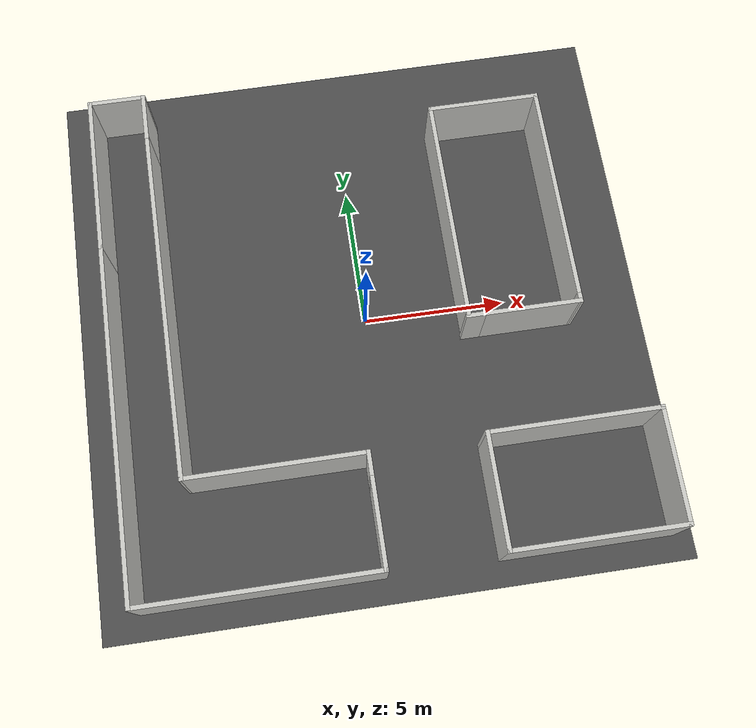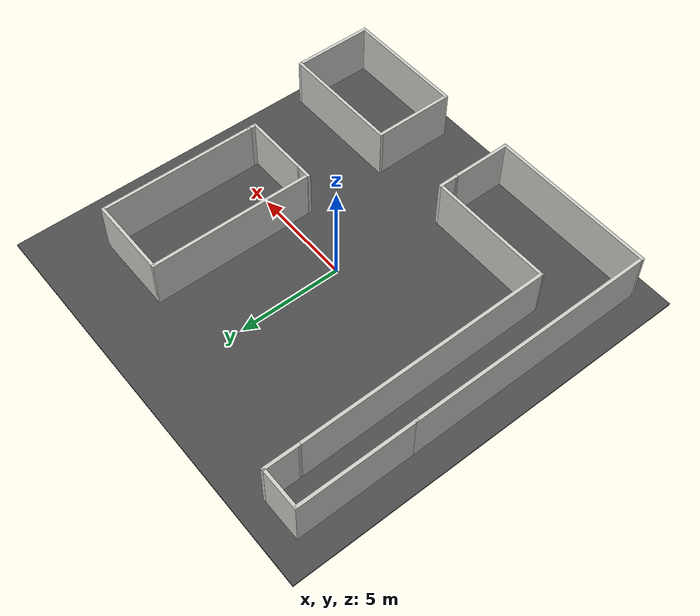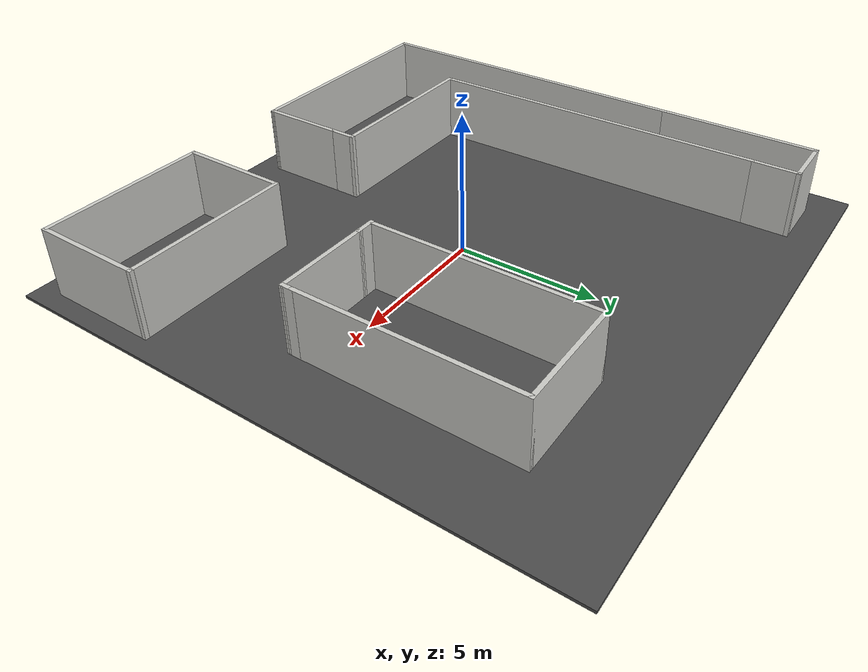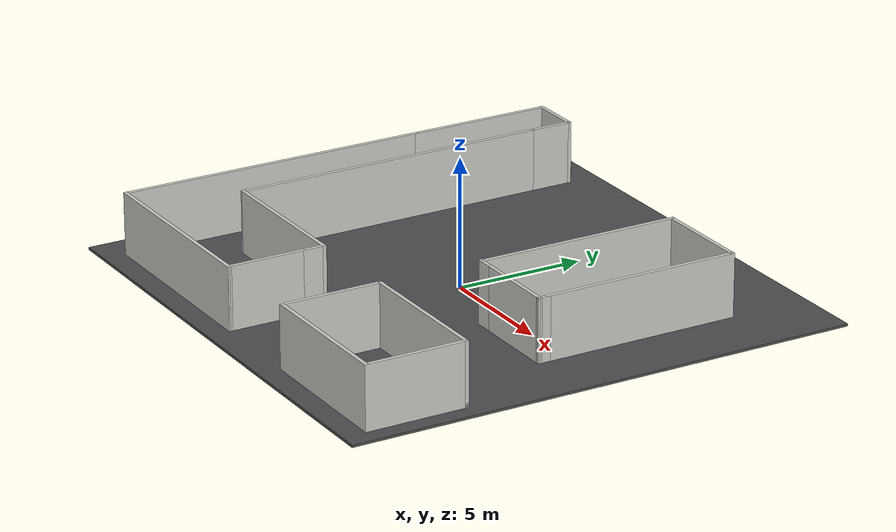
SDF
<?xml version="1.0" ?>
<sdf version="1.6">
  <world name="leo_simu">

    <physics type="ode">
      <ode>
        <solver>
          <!-- IMPORTANT for skid steering to properly work -->
          <friction_model>cone_model</friction_model>

          <island_threads>6</island_threads>
        </solver>
      </ode>
    </physics>

    <light name='sun' type='directional'>
      <pose frame=''>0 0 100 0 0.8 0</pose>
      <diffuse>1 1 1 1</diffuse>
      <specular>0.1 0.1 0.1 1</specular>
      <cast_shadows>1</cast_shadows>
    </light>

    <scene>
      <ambient>0.6 0.6 0.6 1.0</ambient>
      <sky>
        <clouds>
          <speed>12</speed>
        </clouds>
      </sky>
      <shadows>true</shadows>
      <origin_visual>false</origin_visual>
    </scene>

    <include>
      <uri>model://leo_map</uri>
    </include>

  </world>
</sdf>

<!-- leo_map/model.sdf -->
<sdf version='1.7'>
  <model name='leo_map'>
    <model name='Map_simu_leo'>
      <pose>0.167704 -0.085076 0 0 -0 0</pose>
      <link name='Wall_10'>
        <collision name='Wall_10_Collision'>
          <geometry>
            <box>
              <size>1 0.15 2.5</size>
            </box>
          </geometry>
          <pose>0 0 1.25 0 -0 0</pose>
        </collision>
        <visual name='Wall_10_Visual'>
          <pose>0 0 1.25 0 -0 0</pose>
          <geometry>
            <box>
              <size>1 0.15 2.5</size>
            </box>
          </geometry>
          <material>
            <script>
              <uri>file://media/materials/scripts/gazebo.material</uri>
              <name>Gazebo/CeilingTiled</name>
            </script>
            <ambient>1 1 1 1</ambient>
          </material>
          <meta>
            <layer>0</layer>
          </meta>
        </visual>
        <pose>-0.844024 -5.54588 0 0 -0 1.5708</pose>
      </link>
      <link name='Wall_12'>
        <collision name='Wall_12_Collision'>
          <geometry>
            <box>
              <size>6.25 0.15 2.5</size>
            </box>
          </geometry>
          <pose>0 0 1.25 0 -0 0</pose>
        </collision>
        <visual name='Wall_12_Visual'>
          <pose>0 0 1.25 0 -0 0</pose>
          <geometry>
            <box>
              <size>6.25 0.15 2.5</size>
            </box>
          </geometry>
          <material>
            <script>
              <uri>file://media/materials/scripts/gazebo.material</uri>
              <name>Gazebo/CeilingTiled</name>
            </script>
            <ambient>1 1 1 1</ambient>
          </material>
          <meta>
            <layer>0</layer>
          </meta>
        </visual>
        <pose>-3.89402 -5.12088 0 0 -0 3.14159</pose>
      </link>
      <link name='Wall_14'>
        <collision name='Wall_14_Collision'>
          <geometry>
            <box>
              <size>12.5715 0.15 2.5</size>
            </box>
          </geometry>
          <pose>0 0 1.25 0 -0 0</pose>
        </collision>
        <visual name='Wall_14_Visual'>
          <pose>0 0 1.25 0 -0 0</pose>
          <geometry>
            <box>
              <size>12.5715 0.15 2.5</size>
            </box>
          </geometry>
          <material>
            <script>
              <uri>file://media/materials/scripts/gazebo.material</uri>
              <name>Gazebo/CeilingTiled</name>
            </script>
            <ambient>1 1 1 1</ambient>
          </material>
          <meta>
            <layer>0</layer>
          </meta>
        </visual>
        <pose>-6.98199 1.08976 0 0 -0 1.57691</pose>
      </link>
      <link name='Wall_19'>
        <collision name='Wall_19_Collision'>
          <geometry>
            <box>
              <size>2 0.15 2.5</size>
            </box>
          </geometry>
          <pose>0 0 1.25 0 -0 0</pose>
        </collision>
        <visual name='Wall_19_Visual'>
          <pose>0 0 1.25 0 -0 0</pose>
          <geometry>
            <box>
              <size>2 0.15 2.5</size>
            </box>
          </geometry>
          <material>
            <script>
              <uri>file://media/materials/scripts/gazebo.material</uri>
              <name>Gazebo/CeilingTiled</name>
            </script>
            <ambient>1 1 1 1</ambient>
          </material>
          <meta>
            <layer>0</layer>
          </meta>
        </visual>
        <pose>-8.01902 8.89912 0 0 -0 0</pose>
      </link>
      <link name='Wall_21'>
        <collision name='Wall_21_Collision'>
          <geometry>
            <box>
              <size>1.75 0.15 2.5</size>
            </box>
          </geometry>
          <pose>0 0 1.25 0 -0 0</pose>
        </collision>
        <visual name='Wall_21_Visual'>
          <pose>0 0 1.25 0 -0 0</pose>
          <geometry>
            <box>
              <size>1.75 0.15 2.5</size>
            </box>
          </geometry>
          <material>
            <script>
              <uri>file://media/materials/scripts/gazebo.material</uri>
              <name>Gazebo/CeilingTiled</name>
            </script>
            <ambient>1 1 1 1</ambient>
          </material>
          <meta>
            <layer>0</layer>
          </meta>
        </visual>
        <pose>-7.01996 8.10367 0 0 -0 1.5708</pose>
      </link>
      <link name='Wall_23'>
        <collision name='Wall_23_Collision'>
          <geometry>
            <box>
              <size>0.15 0.15 2.5</size>
            </box>
          </geometry>
          <pose>0 0 1.25 0 -0 0</pose>
        </collision>
        <visual name='Wall_23_Visual'>
          <pose>0 0 1.25 0 -0 0</pose>
          <geometry>
            <box>
              <size>0.15 0.15 2.5</size>
            </box>
          </geometry>
          <material>
            <script>
              <uri>file://media/materials/scripts/gazebo.material</uri>
              <name>Gazebo/CeilingTiled</name>
            </script>
            <ambient>1 1 1 1</ambient>
          </material>
          <meta>
            <layer>0</layer>
          </meta>
        </visual>
        <pose>-7.01996 8.9004 0 0 -0 0</pose>
      </link>
      <link name='Wall_3'>
        <collision name='Wall_3_Collision'>
          <geometry>
            <box>
              <size>5.77 0.15 2.5</size>
            </box>
          </geometry>
          <pose>0 0 1.25 0 -0 0</pose>
        </collision>
        <visual name='Wall_3_Visual'>
          <pose>0 0 1.25 0 -0 0</pose>
          <geometry>
            <box>
              <size>5.77 0.15 2.5</size>
            </box>
          </geometry>
          <material>
            <script>
              <uri>file://media/materials/scripts/gazebo.material</uri>
              <name>Gazebo/CeilingTiled</name>
            </script>
            <ambient>1 1 1 1</ambient>
          </material>
          <meta>
            <layer>0</layer>
          </meta>
        </visual>
        <pose>-8.94402 6.08912 0 0 -0 1.5708</pose>
      </link>
      <link name='Wall_30'>
        <collision name='Wall_30_Collision'>
          <geometry>
            <box>
              <size>4 0.15 2.5</size>
            </box>
          </geometry>
          <pose>0 0 1.25 0 -0 0</pose>
        </collision>
        <visual name='Wall_30_Visual'>
          <pose>0 0 1.25 0 -0 0</pose>
          <geometry>
            <box>
              <size>4 0.15 2.5</size>
            </box>
          </geometry>
          <material>
            <script>
              <uri>file://media/materials/scripts/gazebo.material</uri>
              <name>Gazebo/CeilingTiled</name>
            </script>
            <ambient>1 1 1 1</ambient>
          </material>
          <meta>
            <layer>0</layer>
          </meta>
        </visual>
        <pose>3.09404 -6.96439 0 0 -0 -1.5708</pose>
      </link>
      <link name='Wall_33'>
        <collision name='Wall_33_Collision'>
          <geometry>
            <box>
              <size>6 0.15 2.5</size>
            </box>
          </geometry>
          <pose>0 0 1.25 0 -0 0</pose>
        </collision>
        <visual name='Wall_33_Visual'>
          <pose>0 0 1.25 0 -0 0</pose>
          <geometry>
            <box>
              <size>6 0.15 2.5</size>
            </box>
          </geometry>
          <material>
            <script>
              <uri>file://media/materials/scripts/gazebo.material</uri>
              <name>Gazebo/CeilingTiled</name>
            </script>
            <ambient>1 1 1 1</ambient>
          </material>
          <meta>
            <layer>0</layer>
          </meta>
        </visual>
        <pose>6.01904 -8.8894 0 0 -0 0</pose>
      </link>
      <link name='Wall_34'>
        <collision name='Wall_34_Collision'>
          <geometry>
            <box>
              <size>4 0.15 2.5</size>
            </box>
          </geometry>
          <pose>0 0 1.25 0 -0 0</pose>
        </collision>
        <visual name='Wall_34_Visual'>
          <pose>0 0 1.25 0 -0 0</pose>
          <geometry>
            <box>
              <size>4 0.15 2.5</size>
            </box>
          </geometry>
          <material>
            <script>
              <uri>file://media/materials/scripts/gazebo.material</uri>
              <name>Gazebo/CeilingTiled</name>
            </script>
            <ambient>1 1 1 1</ambient>
          </material>
          <meta>
            <layer>0</layer>
          </meta>
        </visual>
        <pose>8.94404 -6.96439 0 0 -0 1.5708</pose>
      </link>
      <link name='Wall_35'>
        <collision name='Wall_35_Collision'>
          <geometry>
            <box>
              <size>6 0.15 2.5</size>
            </box>
          </geometry>
          <pose>0 0 1.25 0 -0 0</pose>
        </collision>
        <visual name='Wall_35_Visual'>
          <pose>0 0 1.25 0 -0 0</pose>
          <geometry>
            <box>
              <size>6 0.15 2.5</size>
            </box>
          </geometry>
          <material>
            <script>
              <uri>file://media/materials/scripts/gazebo.material</uri>
              <name>Gazebo/CeilingTiled</name>
            </script>
            <ambient>1 1 1 1</ambient>
          </material>
          <meta>
            <layer>0</layer>
          </meta>
        </visual>
        <pose>6.01904 -5.03939 0 0 -0 3.14159</pose>
      </link>
      <link name='Wall_43'>
        <collision name='Wall_43_Collision'>
          <geometry>
            <box>
              <size>8 0.15 2.5</size>
            </box>
          </geometry>
          <pose>0 0 1.25 0 -0 0</pose>
        </collision>
        <visual name='Wall_43_Visual'>
          <pose>0 0 1.25 0 -0 0</pose>
          <geometry>
            <box>
              <size>8 0.15 2.5</size>
            </box>
          </geometry>
          <material>
            <script>
              <uri>file://media/materials/scripts/gazebo.material</uri>
              <name>Gazebo/CeilingTiled</name>
            </script>
            <ambient>1 1 1 1</ambient>
          </material>
          <meta>
            <layer>0</layer>
          </meta>
        </visual>
        <pose>3.20368 3.01053 0 0 -0 1.5708</pose>
      </link>
      <link name='Wall_45'>
        <collision name='Wall_45_Collision'>
          <geometry>
            <box>
              <size>4 0.15 2.5</size>
            </box>
          </geometry>
          <pose>0 0 1.25 0 -0 0</pose>
        </collision>
        <visual name='Wall_45_Visual'>
          <pose>0 0 1.25 0 -0 0</pose>
          <geometry>
            <box>
              <size>4 0.15 2.5</size>
            </box>
          </geometry>
          <material>
            <script>
              <uri>file://media/materials/scripts/gazebo.material</uri>
              <name>Gazebo/CeilingTiled</name>
            </script>
            <ambient>1 1 1 1</ambient>
          </material>
          <meta>
            <layer>0</layer>
          </meta>
        </visual>
        <pose>5.12868 6.93553 0 0 -0 0</pose>
      </link>
      <link name='Wall_46'>
        <collision name='Wall_46_Collision'>
          <geometry>
            <box>
              <size>7.75 0.15 2.5</size>
            </box>
          </geometry>
          <pose>0 0 1.25 0 -0 0</pose>
        </collision>
        <visual name='Wall_46_Visual'>
          <pose>0 0 1.25 0 -0 0</pose>
          <geometry>
            <box>
              <size>7.75 0.15 2.5</size>
            </box>
          </geometry>
          <material>
            <script>
              <uri>file://media/materials/scripts/gazebo.material</uri>
              <name>Gazebo/CeilingTiled</name>
            </script>
            <ambient>1 1 1 1</ambient>
          </material>
          <meta>
            <layer>0</layer>
          </meta>
        </visual>
        <pose>7.05368 3.13553 0 0 -0 -1.5708</pose>
      </link>
      <link name='Wall_49'>
        <collision name='Wall_49_Collision'>
          <geometry>
            <box>
              <size>0.5 0.15 2.5</size>
            </box>
          </geometry>
          <pose>0 0 1.25 0 -0 0</pose>
        </collision>
        <visual name='Wall_49_Visual'>
          <pose>0 0 1.25 0 -0 0</pose>
          <geometry>
            <box>
              <size>0.5 0.15 2.5</size>
            </box>
          </geometry>
          <material>
            <script>
              <uri>file://media/materials/scripts/gazebo.material</uri>
              <name>Gazebo/CeilingTiled</name>
            </script>
            <ambient>1 1 1 1</ambient>
          </material>
          <meta>
            <layer>0</layer>
          </meta>
        </visual>
        <pose>7.05368 -0.83947 0 0 -0 -1.5708</pose>
      </link>
      <link name='Wall_5'>
        <collision name='Wall_5_Collision'>
          <geometry>
            <box>
              <size>12.3228 0.15 2.5</size>
            </box>
          </geometry>
          <pose>0 0 1.25 0 -0 0</pose>
        </collision>
        <visual name='Wall_5_Visual'>
          <pose>0 0 1.25 0 -0 0</pose>
          <geometry>
            <box>
              <size>12.3228 0.15 2.5</size>
            </box>
          </geometry>
          <material>
            <script>
              <uri>file://media/materials/scripts/gazebo.material</uri>
              <name>Gazebo/CeilingTiled</name>
            </script>
            <ambient>1 1 1 1</ambient>
          </material>
          <meta>
            <layer>0</layer>
          </meta>
        </visual>
        <pose>-8.94242 -2.80728 0 0 -0 -1.57053</pose>
      </link>
      <link name='Wall_51'>
        <collision name='Wall_51_Collision'>
          <geometry>
            <box>
              <size>3.43084 0.15 2.5</size>
            </box>
          </geometry>
          <pose>0 0 1.25 0 -0 0</pose>
        </collision>
        <visual name='Wall_51_Visual'>
          <pose>0 0 1.25 0 -0 0</pose>
          <geometry>
            <box>
              <size>3.43084 0.15 2.5</size>
            </box>
          </geometry>
          <material>
            <script>
              <uri>file://media/materials/scripts/gazebo.material</uri>
              <name>Gazebo/CeilingTiled</name>
            </script>
            <ambient>1 1 1 1</ambient>
          </material>
          <meta>
            <layer>0</layer>
          </meta>
        </visual>
        <pose>5.41326 -1.01139 0 0 -0 3.13971</pose>
      </link>
      <link name='Wall_52'>
        <collision name='Wall_52_Collision'>
          <geometry>
            <box>
              <size>0.75 0.15 2.5</size>
            </box>
          </geometry>
          <pose>0 0 1.25 0 -0 0</pose>
        </collision>
        <visual name='Wall_52_Visual'>
          <pose>0 0 1.25 0 -0 0</pose>
          <geometry>
            <box>
              <size>0.75 0.15 2.5</size>
            </box>
          </geometry>
          <material>
            <script>
              <uri>file://media/materials/scripts/gazebo.material</uri>
              <name>Gazebo/CeilingTiled</name>
            </script>
            <ambient>1 1 1 1</ambient>
          </material>
          <meta>
            <layer>0</layer>
          </meta>
        </visual>
        <pose>3.47285 -1.00831 0 0 -0 3.14159</pose>
      </link>
      <link name='Wall_7'>
        <collision name='Wall_7_Collision'>
          <geometry>
            <box>
              <size>8.25 0.15 2.5</size>
            </box>
          </geometry>
          <pose>0 0 1.25 0 -0 0</pose>
        </collision>
        <visual name='Wall_7_Visual'>
          <pose>0 0 1.25 0 -0 0</pose>
          <geometry>
            <box>
              <size>8.25 0.15 2.5</size>
            </box>
          </geometry>
          <material>
            <script>
              <uri>file://media/materials/scripts/gazebo.material</uri>
              <name>Gazebo/CeilingTiled</name>
            </script>
            <ambient>1 1 1 1</ambient>
          </material>
          <meta>
            <layer>0</layer>
          </meta>
        </visual>
        <pose>-4.89082 -8.90367 0 0 -0 0</pose>
      </link>
      <link name='Wall_8'>
        <collision name='Wall_8_Collision'>
          <geometry>
            <box>
              <size>3.07279 0.15 2.5</size>
            </box>
          </geometry>
          <pose>0 0 1.25 0 -0 0</pose>
        </collision>
        <visual name='Wall_8_Visual'>
          <pose>0 0 1.25 0 -0 0</pose>
          <geometry>
            <box>
              <size>3.07279 0.15 2.5</size>
            </box>
          </geometry>
          <material>
            <script>
              <uri>file://media/materials/scripts/gazebo.material</uri>
              <name>Gazebo/CeilingTiled</name>
            </script>
            <ambient>1 1 1 1</ambient>
          </material>
          <meta>
            <layer>0</layer>
          </meta>
        </visual>
        <pose>-0.842423 -7.43227 0 0 -0 1.57189</pose>
      </link>
      <static>1</static>
    </model>
    <model name='asphalt_plane'>
      <static>1</static>
      <link name='link'>
        <collision name='collision'>
          <geometry>
            <box>
              <size>20 20 0.1</size>
            </box>
          </geometry>
        </collision>
        <visual name='visual'>
          <cast_shadows>0</cast_shadows>
          <geometry>
            <box>
              <size>20 20 0.1</size>
            </box>
          </geometry>
          <material>
            <script>
              <uri>model://asphalt_plane/materials/scripts</uri>
              <uri>model://asphalt_plane/materials/textures</uri>
              <name>vrc/asphalt</name>
            </script>
          </material>
        </visual>
      </link>
      <pose>-0.167704 0.085076 0 0 -0 0</pose>
    </model>
    <static>0</static>
    <allow_auto_disable>1</allow_auto_disable>
  </model>
</sdf>
